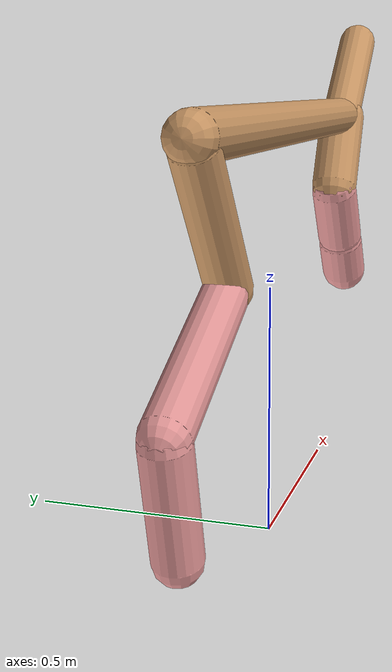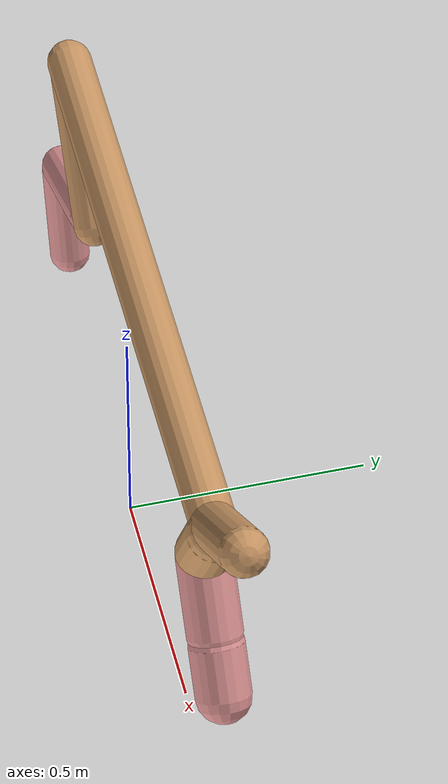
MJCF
<mujoco model="cheetah">
  <compiler angle="radian" coordinate="local" inertiafromgeom="true" settotalmass="14" />
  <default>
    <joint armature=".1" damping=".01" limited="true" solimplimit="0 .8 .03" solreflimit=".02 1" stiffness="8" />
    <geom conaffinity="0" condim="3" contype="1" friction="0.8 .1 .1" rgba="0.8 0.6 .4 1" solimp="0.0 0.8 0.01" solref="0.02 1" />
    <motor ctrllimited="true" ctrlrange="-1 1" />
  </default>
  <size nstack="300000" nuser_geom="1" />
  <option gravity="0 0 -9.81" timestep="0.01" />
  <worldbody>
    <body name="torso" pos="0.0 0.0 0.8191578755925055">
      <joint armature="0" axis="1 0 0" damping="0" limited="false" name="ignorex" pos="0 0 0" stiffness="0" type="slide" />
      <joint armature="0" axis="0 0 1" damping="0" limited="false" name="ignorez" pos="0 0 0" stiffness="0" type="slide" />
      <joint armature="0" axis="0 1 0" damping="0" limited="false" name="ignorey" pos="0 0 0" stiffness="0" type="hinge" />
      <geom fromto="-0.5 0.0 0.0 0.7688057825667615 0.0 0.0" name="torso" size="0.04524087118233148" type="capsule" />
      <geom axisangle="0 1 0 .87" name="head" pos="0.8688057825667616 0.0 0.1" size="0.04751493117763093 0.15" type="capsule" />

      <body name="bthigh" pos="-.5 0 0">
        <joint axis="0 1 0" damping="6" name="bthigh" pos="0 0 0" range="-.52 1.05" stiffness="240" type="hinge" />
        <geom axisangle="0 1 0 -3.8" name="bthigh" pos="0.10892755648590445 0.0 -0.14160582343167577" size="0.04230226659952384 0.1596422813228079" type="capsule" />
        <body name="bshin" pos="0.1778551129718089 0.0 -0.27321164686335153">
          <joint axis="0 1 0" damping="4.5" name="bshin" pos="0 0 0" range="-.785 .785" stiffness="180" type="hinge" />
          <geom axisangle="0 1 0 -2.03" name="bshin" pos="-0.15354805643454097 0.0 -0.07677402821727049" rgba="0.9 0.6 0.6 1" size="0.04230226659952384 0.16514718757531852" type="capsule" />
          <body name="bfoot" pos="-0.30709611286908195 0.0 -0.15354805643454097">
            <joint axis="0 1 0" damping="3" name="bfoot" pos="0 0 0" range="-.4 .785" stiffness="120" type="hinge" />
            <geom axisangle="0 1 0 -.27" name="bfoot" pos="0.03280466879798151 0.0 -0.10606842911347357" rgba="0.9 0.6 0.6 1" size="0.04230226659952384 0.1034922375471996" type="capsule" />
            <inertial mass="10" />
          </body>
        </body>
      </body>
      <body name="fthigh" pos="0.7688057825667616 0.0 0.0">
        <joint axis="0 1 0" damping="4.5" name="fthigh" pos="0 0 0" range="-1.5 0.8" stiffness="180" type="hinge" />
        <geom axisangle="0 1 0 .52" name="fthigh" pos="-0.05296915244588936 0.0 -0.09080426133581032" size="0.05599471957622296 0.09919998632309425" type="capsule" />
        <body name="fshin" pos="-0.10593830489177872 0.0 -0.18160852267162064">
          <joint axis="0 1 0" damping="3" name="fshin" pos="0 0 0" range="-1.2 1.1" stiffness="120" type="hinge" />
          <geom axisangle="0 1 0 -.6" name="fshin" pos="0.04922784657797237 0.0 -0.06816163372334635" rgba="0.9 0.6 0.6 1" size="0.05599471957622296 0.07906164323494728" type="capsule" />
          <body name="ffoot" pos="0.09845569315594474 0.0 -0.1363232674466927">
            <joint axis="0 1 0" damping="1.5" name="ffoot" pos="0 0 0" range="-3.1 -0.3" stiffness="60" type="hinge" />
            <geom axisangle="0 1 0 -.6" name="ffoot" pos="0.03538020316721743 0.0 -0.05503587159344935" rgba="0.9 0.6 0.6 1" size="0.05599471957622296 0.05221051911741803" type="capsule" />
            <inertial mass="10" />
          </body>
        </body>
      </body>
    </body>
  </worldbody>
  <actuator>
    <motor gear="120" joint="bthigh" name="bthigh" />
    <motor gear="90" joint="bshin" name="bshin" />
    <motor gear="60" joint="bfoot" name="bfoot" />
    <motor gear="120" joint="fthigh" name="fthigh" />
    <motor gear="60" joint="fshin" name="fshin" />
    <motor gear="30" joint="ffoot" name="ffoot" />
  </actuator>
</mujoco>
